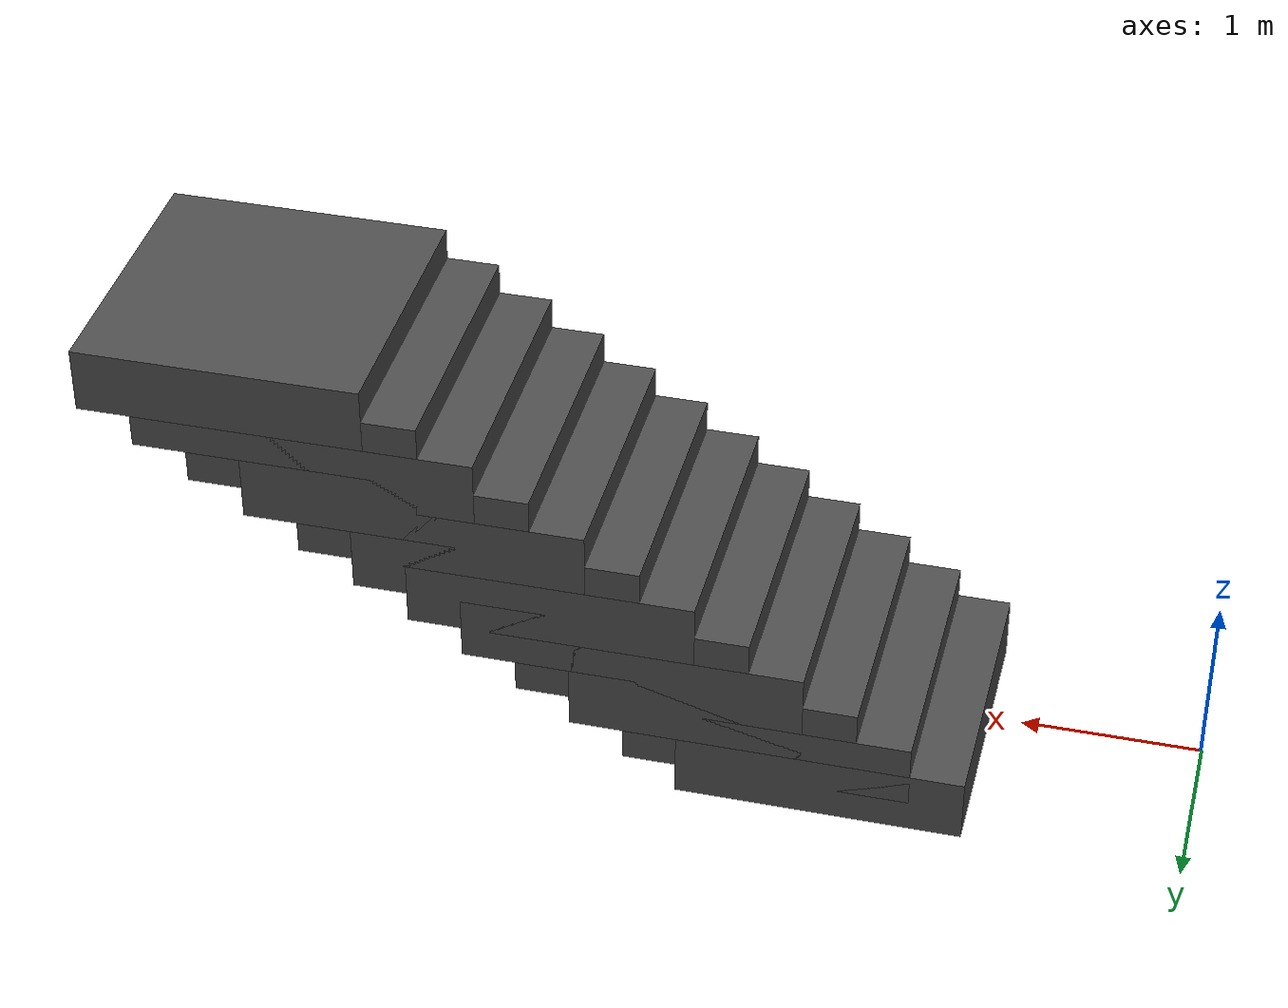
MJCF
<mujoco>
  <worldbody>
    <light diffuse=".5 .5 .5" pos="2 0 0.075" dir="0 0 -1"/>
    <body pos="2 0 0">
      <geom type="box" size=".8 .8 0.185" rgba="0.3 0.3 0.3 1"/>
    </body>
  </worldbody>

  <worldbody>
    <light diffuse=".5 .5 .5" pos="3 0 0.3" dir="0 0 -1"/>
    <body pos="2.3 0 0.185">
      <geom type="box" size=".8 .8 0.185" rgba="0.3 0.3 0.3 1"/>
    </body>
  </worldbody>

  <worldbody>
    <light diffuse=".5 .5 .5" pos="4 0 0.5" dir="0 0 -1"/>
    <body pos="2.6 0 0.37">
      <geom type="box" size=".8 .8 0.185" rgba="0.3 0.3 0.3 1"/>
    </body>
  </worldbody>

  <worldbody>
    <light diffuse=".5 .5 .5" pos="5 0 0.5" dir="0 0 -1"/>
    <body pos="2.9 0 0.555">
      <geom type="box" size=".8 .8 0.185" rgba="0.3 0.3 0.3 1"/>
    </body>
  </worldbody>

  <worldbody>
    <light diffuse=".5 .5 .5" pos="6 0 0.5" dir="0 0 -1"/>
    <body pos="3.2 0 0.74">
      <geom type="box" size=".8 .8 0.185" rgba="0.3 0.3 0.3 1"/>
    </body>
  </worldbody>

  <worldbody>
    <light diffuse=".5 .5 .5" pos="7 0 5" dir="0 0 -1"/>
    <body pos="3.5 0 0.925">
      <geom type="box" size=".8 .8 0.185" rgba="0.3 0.3 0.3 1"/>
    </body>
  </worldbody>

  <!-- Continuing the pattern to double the number of steps -->

  <worldbody>
    <light diffuse=".5 .5 .5" pos="8 0 5" dir="0 0 -1"/>
    <body pos="3.8 0 1.11">
      <geom type="box" size=".8 .8 0.185" rgba="0.3 0.3 0.3 1"/>
    </body>
  </worldbody>

  <worldbody>
    <light diffuse=".5 .5 .5" pos="9 0 5" dir="0 0 -1"/>
    <body pos="4.1 0 1.295">
      <geom type="box" size=".8 .8 0.185" rgba="0.3 0.3 0.3 1"/>
    </body>
  </worldbody>

  <worldbody>
    <light diffuse=".5 .5 .5" pos="10 0 5" dir="0 0 -1"/>
    <body pos="4.4 0 1.48">
      <geom type="box" size=".8 .8 0.185" rgba="0.3 0.3 0.3 1"/>
    </body>
  </worldbody>

  <worldbody>
    <light diffuse=".5 .5 .5" pos="11 0 5" dir="0 0 -1"/>
    <body pos="4.7 0 1.665">
      <geom type="box" size=".8 .8 0.185" rgba="0.3 0.3 0.3 1"/>
    </body>
  </worldbody>

  <worldbody>
    <light diffuse=".5 .5 .5" pos="12 0 5" dir="0 0 -1"/>
    <body pos="5 0 1.85">
      <geom type="box" size=".8 .8 0.185" rgba="0.3 0.3 0.3 1"/>
    </body>
  </worldbody>

  <worldbody>
    <light diffuse=".5 .5 .5" pos="13 0 5" dir="0 0 -1"/>
    <body pos="5.3 0 2.035">
      <geom type="box" size=".8 .8 0.185" rgba="0.3 0.3 0.3 1"/>
    </body>
  </worldbody>
</mujoco>
